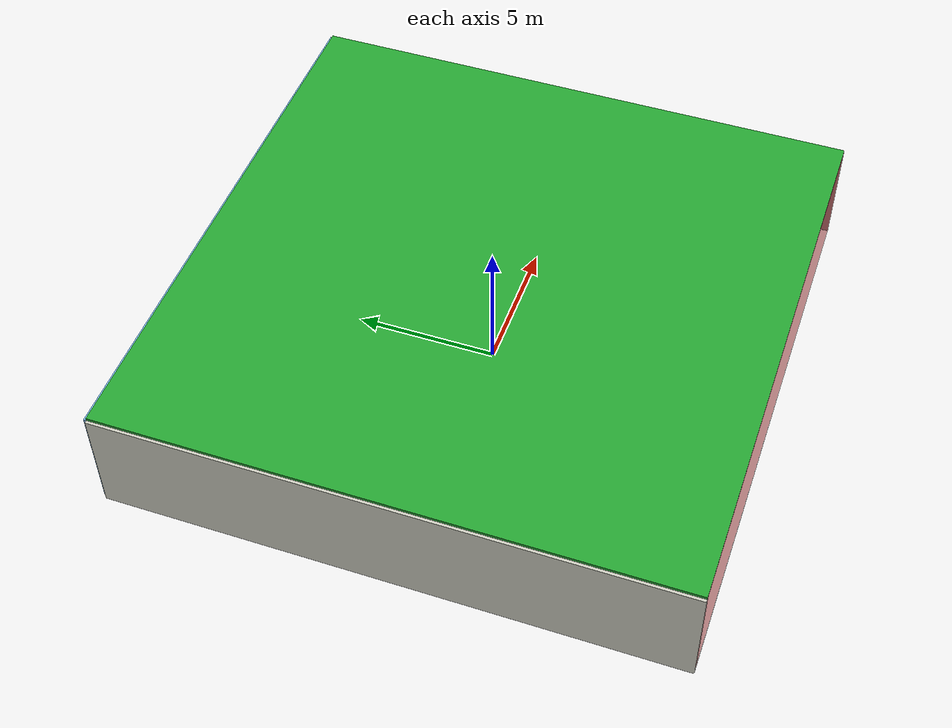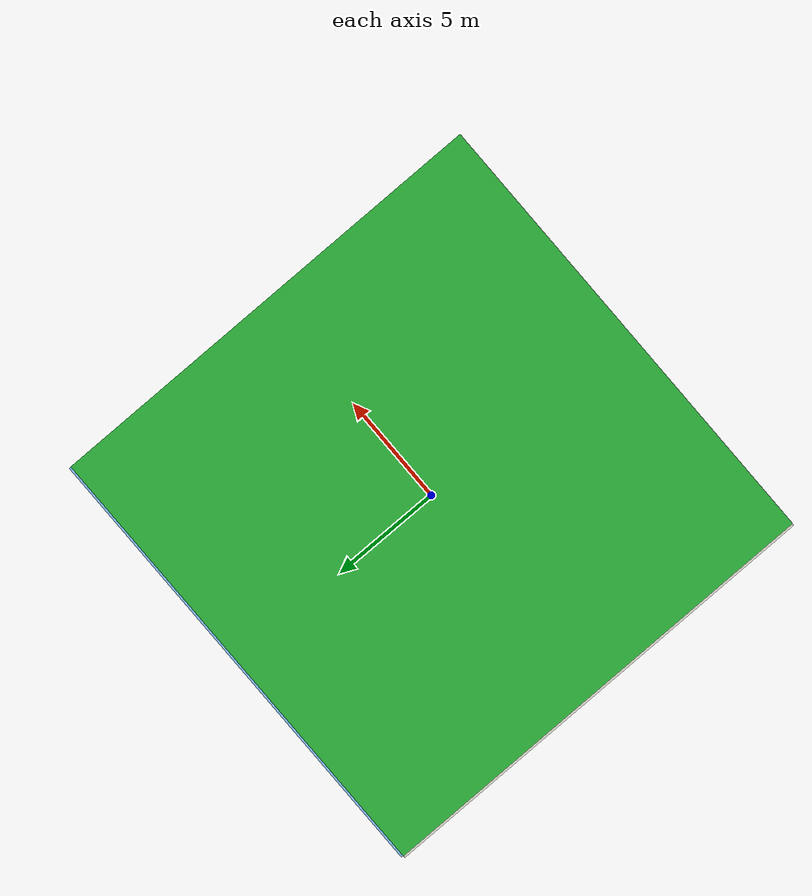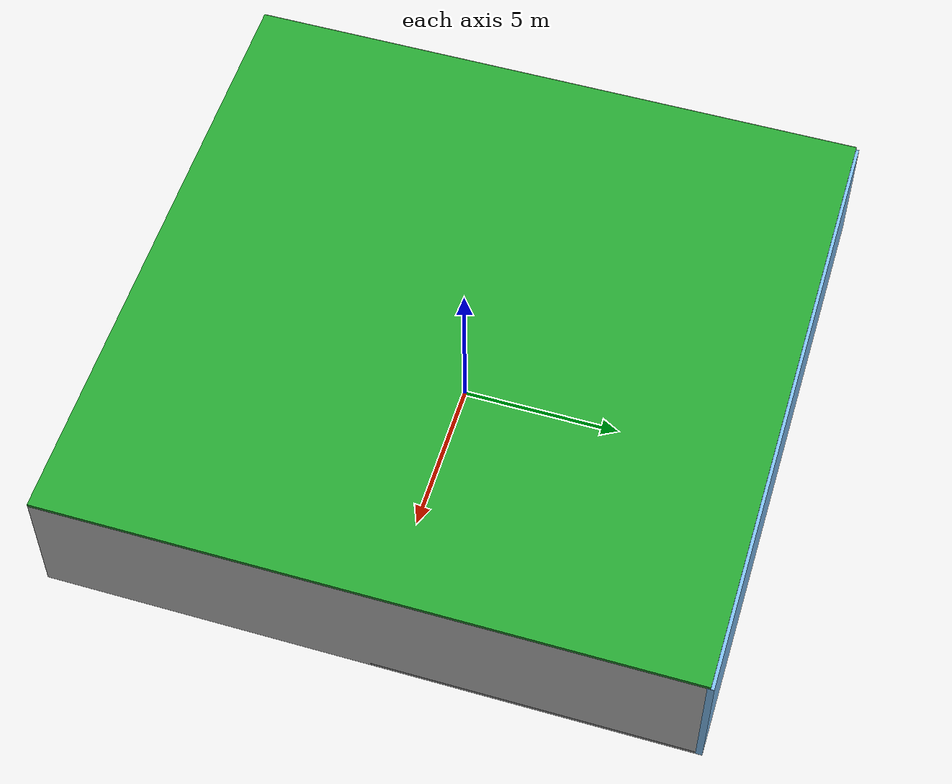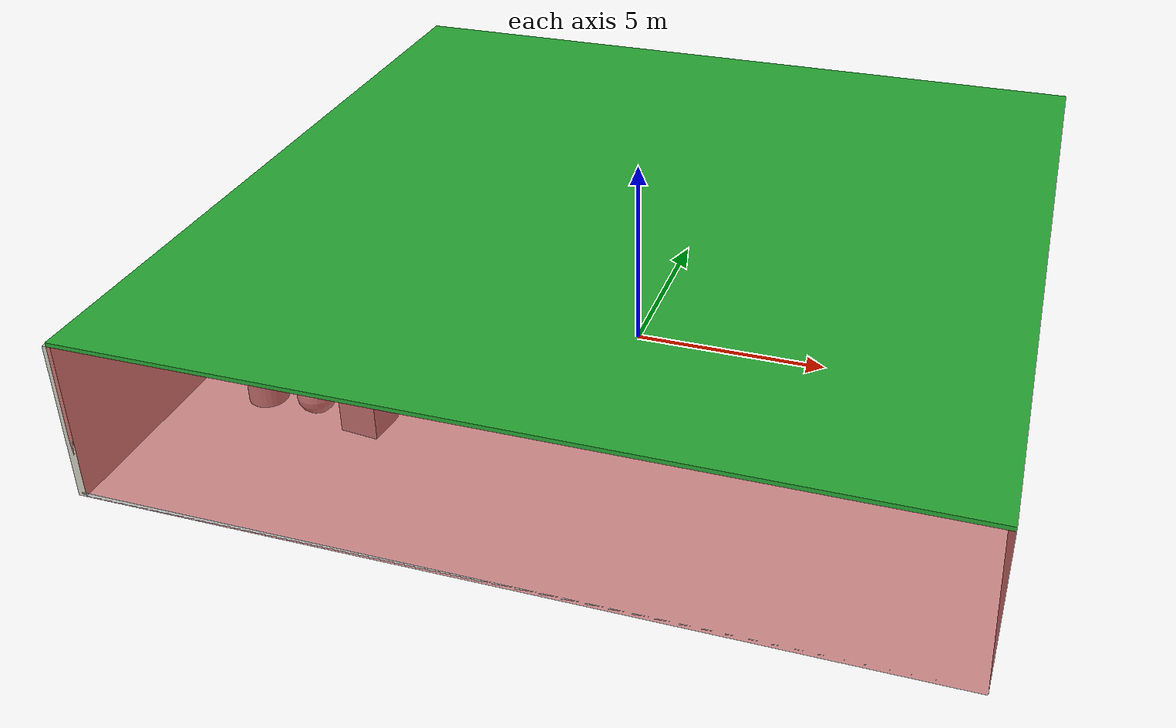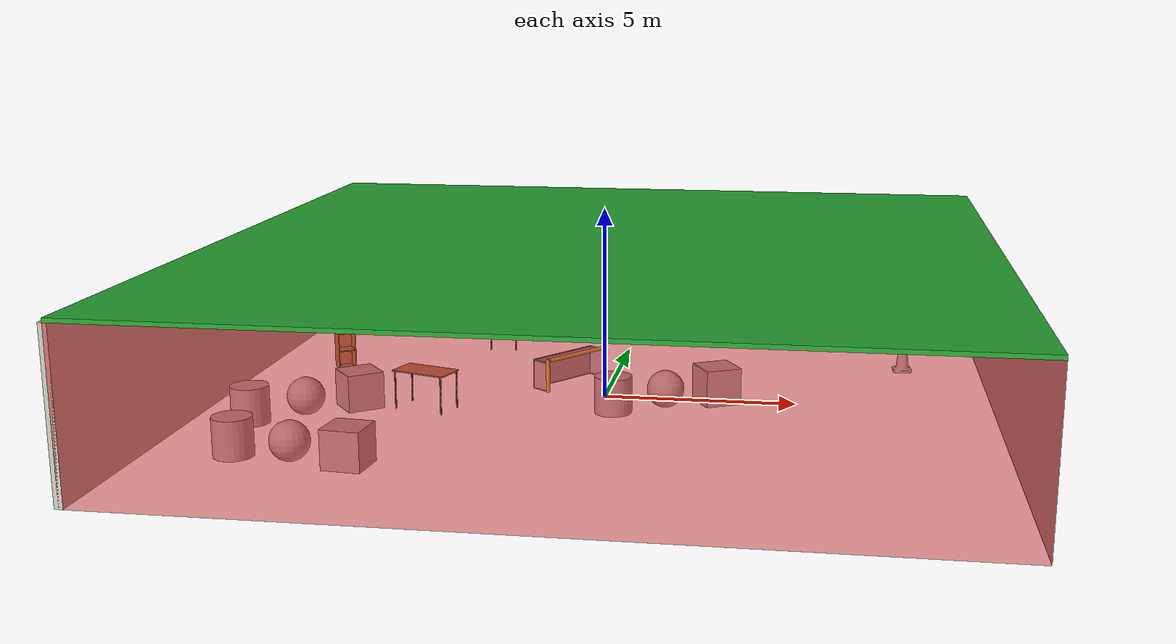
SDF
<sdf version="1.4">
 <world name="default">
  <physics type="ode">
   <max_step_size>0.001</max_step_size>
   <real_time_factor>1</real_time_factor>
   <real_time_update_rate>1000</real_time_update_rate>
   <gravity>0 0 -9.8</gravity>
  </physics>
  <scene><ambient>0.4 0.4 0.4 1</ambient><background>0.7 0.7 0.7 1</background><shadows>1</shadows></scene>
  <model name="Surrounding">
   <static>1</static>
   <link name="Ceiling">
    <collision name="Ceiling_Collision"><geometry><box><size>20 20 0.1</size></box></geometry></collision>
    <visual name="Ceiling_Visual">
     <geometry><box><size>20 20 0.1</size></box></geometry>
     <material>
      <script><uri>file://media/materials/scripts/gazebo.material</uri><name>Gazebo/GreenGlow</name></script>
     </material>
    </visual>
    <pose>0 0 4.05 0 0 0</pose>
   </link>
   <link name="Wall_South">
    <collision name="Wall_South_Collision">
     <geometry><box><size>20 0 4</size></box></geometry>
     <pose>0 0 2 0 -0 0</pose>
    </collision>
    <visual name="Wall_South_Visual">
     <pose>0 0 2 0 -0 0</pose>
     <geometry><box><size>20 0 4</size></box></geometry>
     <material>
      <script><uri>file://media/materials/scripts/gazebo.material</uri><name>Gazebo/RedTransparent</name></script>
     </material>
    </visual>
    <velocity_decay><linear>0</linear><angular>0</angular></velocity_decay>
    <pose>0 -10 0 0 -0 0</pose>
   </link>
   <link name="Wall_East">
    <collision name="Wall_21_Collision">
     <geometry><box><size>20 0 4</size></box></geometry>
     <pose>0 0 2 0 -0 0</pose>
    </collision>
    <visual name="Wall_21_Visual">
     <pose>0 0 2 0 -0 0</pose>
     <geometry><box><size>20 0 4</size></box></geometry>
     <material>
      <script><uri>file://media/materials/scripts/gazebo.material</uri><name>Gazebo/JointAnchor</name></script>
     </material>
    </visual>
    <velocity_decay><linear>0</linear><angular>0</angular></velocity_decay>
    <pose>10 0 0 0 -0 1.5708</pose>
   </link>
   <link name="Wall_North">
    <collision name="Wall_22_Collision">
     <geometry><box><size>20 0.2 4</size></box></geometry>
     <pose>0 0 2 0 -0 0</pose>
    </collision>
    <visual name="Wall_22_Visual">
     <pose>0 0 2 0 -0 0</pose>
     <geometry><box><size>20 0.2 4</size></box></geometry>
     <material>
      <script><uri>file://media/materials/scripts/gazebo.material</uri><name>Gazebo/SkyBlue</name></script>
     </material>
    </visual>
    <velocity_decay><linear>0</linear><angular>0</angular></velocity_decay>
    <pose>0 10 0 0 -0 0</pose>
   </link>
   <link name="Wall_West">
    <collision name="Wall_23_Collision">
     <geometry><box><size>20 0.2 4</size></box></geometry>
     <pose>0 0 2 0 -0 0</pose>
    </collision>
    <visual name="Wall_23_Visual">
     <pose>0 0 2 0 -0 0</pose>
     <geometry><box><size>20 0.2 4</size></box></geometry>
     <material>
      <script><uri>file://media/materials/scripts/gazebo.material</uri><name>Gazebo/PaintedWall</name></script>
     </material>
    </visual>
    <velocity_decay><linear>0</linear><angular>0</angular></velocity_decay>
    <pose>-10 0 0 0 0 -1.5708</pose>
   </link>
   <link name="Ground_link">
    <collision name="collision">
     <pose>0 0 .05 0 -0 0</pose>
     <geometry><box><size>20 20 0.1</size></box></geometry>
    </collision>
    <visual name="visual">
     <pose>0 0 .05 0 -0 0</pose>
     <geometry><box><size>20 20 0.1</size></box></geometry>
     <material>
      <script><uri>file://media/materials/scripts/gazebo.material</uri><name>Gazebo/GreyTransparent</name></script>
     </material>
    </visual>
   </link>
   <static>1</static>
  </model>
  <spherical_coordinates>
   <surface_model>EARTH_WGS84</surface_model>
   <latitude_deg>0</latitude_deg>
   <longitude_deg>0</longitude_deg>
   <elevation>0</elevation>
   <heading_deg>0</heading_deg>
  </spherical_coordinates>
  <light name="lightball_0" type="diffuse">
   <diffuse>0.8 0.8 0.8 1</diffuse>
   <specular>0.2 0.2 0.2 1</specular>
   <attenuation>
    <range>100</range>
    <constant>0.7</constant>
    <linear>0.01</linear>
    <quadratic>0.001</quadratic>
   </attenuation>
   <direction>-0.5 0.1 -0.9</direction>
   <pose>7.94688358655 -9.72205776157 1.47190596385 0 0 0</pose>
  </light>
  <light name="lightball_1" type="diffuse">
   <diffuse>0.8 0.8 0.8 1</diffuse>
   <specular>0.2 0.2 0.2 1</specular>
   <attenuation>
    <range>100</range>
    <constant>0.7</constant>
    <linear>0.01</linear>
    <quadratic>0.001</quadratic>
   </attenuation>
   <direction>-0.5 0.1 -0.9</direction>
   <pose>7.05791170953 5.57300570306 3.51850680125 0 0 0</pose>
  </light>
  <light name="lightball_2" type="diffuse">
   <diffuse>0.8 0.8 0.8 1</diffuse>
   <specular>0.2 0.2 0.2 1</specular>
   <attenuation>
    <range>100</range>
    <constant>0.7</constant>
    <linear>0.01</linear>
    <quadratic>0.001</quadratic>
   </attenuation>
   <direction>-0.5 0.1 -0.9</direction>
   <pose>6.19302147561 -6.05352376364 1.5639831018 0 0 0</pose>
  </light>
  <light name="lightball_3" type="diffuse">
   <diffuse>0.8 0.8 0.8 1</diffuse>
   <specular>0.2 0.2 0.2 1</specular>
   <attenuation>
    <range>100</range>
    <constant>0.7</constant>
    <linear>0.01</linear>
    <quadratic>0.001</quadratic>
   </attenuation>
   <direction>-0.5 0.1 -0.9</direction>
   <pose>7.48078436466 -1.30635473102 2.64916350317 0 0 0</pose>
  </light>
  <light name="lightball_4" type="diffuse">
   <diffuse>0.8 0.8 0.8 1</diffuse>
   <specular>0.2 0.2 0.2 1</specular>
   <attenuation>
    <range>100</range>
    <constant>0.7</constant>
    <linear>0.01</linear>
    <quadratic>0.001</quadratic>
   </attenuation>
   <direction>-0.5 0.1 -0.9</direction>
   <pose>4.94204943731 -6.42890581231 2.36640187546 0 0 0</pose>
  </light>
  <light name="lightball_5" type="diffuse">
   <diffuse>0.8 0.8 0.8 1</diffuse>
   <specular>0.2 0.2 0.2 1</specular>
   <attenuation>
    <range>100</range>
    <constant>0.7</constant>
    <linear>0.01</linear>
    <quadratic>0.001</quadratic>
   </attenuation>
   <direction>-0.5 0.1 -0.9</direction>
   <pose>7.02304843653 -7.11746299901 3.0563004282 0 0 0</pose>
  </light>
  <light name="lightball_6" type="diffuse">
   <diffuse>0.8 0.8 0.8 1</diffuse>
   <specular>0.2 0.2 0.2 1</specular>
   <attenuation>
    <range>100</range>
    <constant>0.7</constant>
    <linear>0.01</linear>
    <quadratic>0.001</quadratic>
   </attenuation>
   <direction>-0.5 0.1 -0.9</direction>
   <pose>-6.66284092167 -0.211001892513 1.6362913972 0 0 0</pose>
  </light>
  <light name="lightball_7" type="diffuse">
   <diffuse>0.8 0.8 0.8 1</diffuse>
   <specular>0.2 0.2 0.2 1</specular>
   <attenuation>
    <range>100</range>
    <constant>0.7</constant>
    <linear>0.01</linear>
    <quadratic>0.001</quadratic>
   </attenuation>
   <direction>-0.5 0.1 -0.9</direction>
   <pose>-5.4785369844 -3.1672194325 3.02383676584 0 0 0</pose>
  </light>
  <light name="lightball_8" type="diffuse">
   <diffuse>0.8 0.8 0.8 1</diffuse>
   <specular>0.2 0.2 0.2 1</specular>
   <attenuation>
    <range>100</range>
    <constant>0.7</constant>
    <linear>0.01</linear>
    <quadratic>0.001</quadratic>
   </attenuation>
   <direction>-0.5 0.1 -0.9</direction>
   <pose>6.32504122851 4.73479318148 3.23533079227 0 0 0</pose>
  </light>
  <light name="lightball_9" type="diffuse">
   <diffuse>0.8 0.8 0.8 1</diffuse>
   <specular>0.2 0.2 0.2 1</specular>
   <attenuation>
    <range>100</range>
    <constant>0.7</constant>
    <linear>0.01</linear>
    <quadratic>0.001</quadratic>
   </attenuation>
   <direction>-0.5 0.1 -0.9</direction>
   <pose>9.04110540605 7.06596469745 0.933947000525 0 0 0</pose>
  </light>
  <light name="lightball_10" type="diffuse">
   <diffuse>0.8 0.8 0.8 1</diffuse>
   <specular>0.2 0.2 0.2 1</specular>
   <attenuation>
    <range>100</range>
    <constant>0.7</constant>
    <linear>0.01</linear>
    <quadratic>0.001</quadratic>
   </attenuation>
   <direction>-0.5 0.1 -0.9</direction>
   <pose>-0.553658862938 -4.80378559678 2.81453575976 0 0 0</pose>
  </light>
  <light name="lightball_11" type="diffuse">
   <diffuse>0.8 0.8 0.8 1</diffuse>
   <specular>0.2 0.2 0.2 1</specular>
   <attenuation>
    <range>100</range>
    <constant>0.7</constant>
    <linear>0.01</linear>
    <quadratic>0.001</quadratic>
   </attenuation>
   <direction>-0.5 0.1 -0.9</direction>
   <pose>-4.24918545974 1.68586919125 3.3612218841 0 0 0</pose>
  </light>
  <light name="lightball_12" type="diffuse">
   <diffuse>0.8 0.8 0.8 1</diffuse>
   <specular>0.2 0.2 0.2 1</specular>
   <attenuation>
    <range>100</range>
    <constant>0.7</constant>
    <linear>0.01</linear>
    <quadratic>0.001</quadratic>
   </attenuation>
   <direction>-0.5 0.1 -0.9</direction>
   <pose>-2.2858167591 -7.06071833407 2.18206124574 0 0 0</pose>
  </light>
  <include>
   <uri>model://textured_shapes</uri>
   <pose>-6.89726739834 -4.84810275709 0 0 0 1.46910242839</pose>
  </include>
  <include>
   <uri>model://textured_shapes</uri>
   <pose>-7.83038987509 -1.11669618494 0 0 0 2.23659393885</pose>
  </include>
  <include><uri>model://cabinet</uri><pose>-7.72359411558 1.90390599642 0 0 0 2.13522330546</pose></include>
  <include><uri>model://cabinet</uri><pose>-7.37247592006 7.25630746992 0 0 0 0.863627810026</pose></include>
  <include><uri>model://table</uri><pose>-4.37608500225 -1.73025393913 0 0 0 2.83106656484</pose></include>
  <include><uri>model://table</uri><pose>-3.71201018628 5.0934679909 0 0 0 1.59358338155</pose></include>
  <include>
   <uri>model://robocup_3Dsim_goal</uri>
   <pose>-0.928650886081 1.02798030908 0 0 0 2.49616188175</pose>
  </include>
  <include>
   <uri>model://textured_shapes</uri>
   <pose>1.50784775542 0.961773821523 0 0 0 2.06230778505</pose>
  </include>
  <include>
   <uri>model://construction_cone</uri>
   <pose>7.88688812632 3.76440130516 0 0 0 1.63672139461</pose>
  </include>
 </world>
</sdf>

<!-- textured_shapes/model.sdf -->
<sdf version="1.6">
  <model name="textured_shapes">
    <pose>0 0 0.5 0 0 0</pose>
    <link name="box">
      <pose>0 -1.5 0 0 0 0</pose>
      <collision name="collision">
        <geometry>
          <box>
            <size>1 1 1</size>
          </box>
        </geometry>
      </collision>
      <visual name="visual">
        <geometry>
          <box>
            <size>1 1 1</size>
          </box>
        </geometry>
        <material>
          <script>
            <uri>model://../model_source/models/textured_shapes/materials/scripts</uri>
            <uri>model://../model_source/models/textured_shapes/materials/textures</uri>
            <name>TexturedShape/Squares</name>
          </script>
        </material>
      </visual>
    </link>
    <link name="sphere">
      <collision name="collision">
        <geometry>
          <sphere>
            <radius>0.5</radius>
          </sphere>
        </geometry>
      </collision>
      <visual name="visual">
        <geometry>
          <sphere>
            <radius>0.5</radius>
          </sphere>
        </geometry>
        <material>
          <script>
            <uri>model://../model_source/models/textured_shapes/materials/scripts</uri>
            <uri>model://../model_source/models/textured_shapes/materials/textures</uri>
            <name>TexturedShape/Squares</name>
          </script>
        </material>
      </visual>
    </link>
    <link name="cylinder">
      <pose>0 1.5 0 0 0 0</pose>
      <collision name="collision">
        <geometry>
          <cylinder>
            <radius>0.5</radius>
            <length>1</length>
          </cylinder>
        </geometry>
      </collision>
      <visual name="visual">
        <geometry>
          <cylinder>
            <radius>0.5</radius>
            <length>1</length>
          </cylinder>
        </geometry>
        <material>
          <script>
            <uri>model://../model_source/models/textured_shapes/materials/scripts</uri>
            <uri>model://../model_source/models/textured_shapes/materials/textures</uri>
            <name>TexturedShape/Squares</name>
          </script>
        </material>
      </visual>
    </link>
  </model>
</sdf>

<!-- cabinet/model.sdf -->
<sdf version="1.5">
  <model name="cabinet">
    <static>true</static>
    <link name="cabinet_bottom_plate">
      <inertial>
        <pose>0 0 -1 0 0 0</pose>
        <inertia>
          <ixx>2.050000</ixx>
          <ixy>0</ixy>
          <ixz>0</ixz>
          <iyy>2.050000</iyy>
          <iyz>0</iyz>
          <izz>2.050000</izz>
        </inertia>
        <mass>25.000000</mass>
      </inertial>
      <collision name="cabinet_bottom_plate_geom">
        <pose>0 0 0.010000 0 0 0</pose>
        <geometry>
          <box>
            <size>0.450000 0.450000 0.020000</size>
          </box>
        </geometry>
      </collision>
      <visual name="cabinet_bottom_plate_geom_visual">
        <pose>0 0 0.010000 0 0 0</pose>
        <geometry>
          <box>
            <size>0.450000 0.450000 0.020000</size>
          </box>
        </geometry>
        <material>
          <script>
            <uri>model://media/materials/scripts/gazebo.material</uri>
            <name>Gazebo/Wood</name>
          </script>
        </material>
      </visual>
      <collision name="cabinet_bottom_plate_geom_cabinet_back_plate">
        <pose>0.235000 0 0.510000 0 0 0</pose>
        <geometry>
          <box>
            <size>0.020000 0.450000 1.020000</size>
          </box>
        </geometry>
      </collision>
      <visual name="cabinet_bottom_plate_geom_cabinet_back_plate_visual">
        <pose>0.235000 0 0.510000 0 0 0</pose>
        <geometry>
          <box>
            <size>0.020000 0.450000 1.020000</size>
          </box>
        </geometry>
        <material>
          <script>
            <uri>model://media/materials/scripts/gazebo.material</uri>
            <name>Gazebo/Wood</name>
          </script>
        </material>
      </visual>
      <collision name="cabinet_bottom_plate_geom_cabinet_left_plate">
        <pose>0 0.235000 0.510000 0 0 0</pose>
        <geometry>
          <box>
            <size>0.450000 0.020000 1.020000</size>
          </box>
        </geometry>
      </collision>
      <visual name="cabinet_bottom_plate_geom_cabinet_left_plate_visual">
        <pose>0 0.235000 0.510000 0 0 0</pose>
        <geometry>
          <box>
            <size>0.450000 0.020000 1.020000</size>
          </box>
        </geometry>
        <material>
          <script>
            <uri>model://media/materials/scripts/gazebo.material</uri>
            <name>Gazebo/Wood</name>
          </script>
        </material>
      </visual>
      <collision name="cabinet_bottom_plate_geom_cabinet_middle_plate">
        <pose>0 0 0.510000 0 0 0</pose>
        <geometry>
          <box>
            <size>0.450000 0.450000 0.020000</size>
          </box>
        </geometry>
      </collision>
      <visual name="cabinet_bottom_plate_geom_cabinet_middle_plate_visual">
        <pose>0 0 0.510000 0 0 0</pose>
        <geometry>
          <box>
            <size>0.450000 0.450000 0.020000</size>
          </box>
        </geometry>
        <material>
          <script>
            <uri>model://media/materials/scripts/gazebo.material</uri>
            <name>Gazebo/Wood</name>
          </script>
        </material>
      </visual>
      <collision name="cabinet_bottom_plate_geom_cabinet_right_plate">
        <pose>0 -0.235000 0.510000 0 0 0</pose>
        <geometry>
          <box>
            <size>0.450000 0.020000 1.020000</size>
          </box>
        </geometry>
      </collision>
      <visual name="cabinet_bottom_plate_geom_cabinet_right_plate_visual">
        <pose>0 -0.235000 0.510000 0 0 0</pose>
        <geometry>
          <box>
            <size>0.450000 0.020000 1.020000</size>
          </box>
        </geometry>
        <material>
          <script>
            <uri>model://media/materials/scripts/gazebo.material</uri>
            <name>Gazebo/Wood</name>
          </script>
        </material>
      </visual>
      <collision name="cabinet_bottom_plate_geom_cabinet_top_plate">
        <pose>0 0 1.010000 0 0 0</pose>
        <geometry>
          <box>
            <size>0.450000 0.450000 0.020000</size>
          </box>
        </geometry>
      </collision>
      <visual name="cabinet_bottom_plate_geom_cabinet_top_plate_visual">
        <pose>0 0 1.010000 0 0 0</pose>
        <geometry>
          <box>
            <size>0.450000 0.450000 0.020000</size>
          </box>
        </geometry>
        <material>
          <script>
            <uri>model://media/materials/scripts/gazebo.material</uri>
            <name>Gazebo/Wood</name>
          </script>
        </material>
      </visual>
    </link>
  </model>
</sdf>

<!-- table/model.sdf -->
<sdf version="1.5">
  <model name="table">
    <static>true</static>
    <link name="link">
      <collision name="surface">
        <pose>0 0 1.0 0 0 0</pose>
        <geometry>
          <box>
            <size>1.5 0.8 0.03</size>
          </box>
        </geometry>
        <surface>
          <friction>
            <ode>
              <mu>0.6</mu>
              <mu2>0.6</mu2>
            </ode>
          </friction>
        </surface>
      </collision>
      <visual name="visual1">
        <pose>0 0 1.0 0 0 0</pose>
        <geometry>
          <box>
            <size>1.5 0.8 0.03</size>
          </box>
        </geometry>
        <material>
          <script>
            <uri>model://media/materials/scripts/gazebo.material</uri>
            <name>Gazebo/Wood</name>
          </script>
        </material>
      </visual>
      <collision name="front_left_leg">
        <pose>0.68 0.38 0.5 0 0 0</pose>
        <geometry>
          <cylinder>
            <radius>0.02</radius>
            <length>1.0</length>
          </cylinder>
        </geometry>
      </collision>
      <visual name="front_left_leg">
        <pose>0.68 0.38 0.5 0 0 0</pose>
        <geometry>
          <cylinder>
            <radius>0.02</radius>
            <length>1.0</length>
          </cylinder>
        </geometry>
        <material>
          <script>
            <uri>model://media/materials/scripts/gazebo.material</uri>
            <name>Gazebo/Grey</name>
          </script>
        </material>
      </visual>
      <collision name="front_right_leg">
        <pose>0.68 -0.38 0.5 0 0 0</pose>
        <geometry>
          <cylinder>
            <radius>0.02</radius>
            <length>1.0</length>
          </cylinder>
        </geometry>
      </collision>
      <visual name="front_right_leg">
        <pose>0.68 -0.38 0.5 0 0 0</pose>
        <geometry>
          <cylinder>
            <radius>0.02</radius>
            <length>1.0</length>
          </cylinder>
        </geometry>
        <material>
          <script>
            <uri>model://media/materials/scripts/gazebo.material</uri>
            <name>Gazebo/Grey</name>
          </script>
        </material>
      </visual>
      <collision name="back_right_leg">
        <pose>-0.68 -0.38 0.5 0 0 0</pose>
        <geometry>
          <cylinder>
            <radius>0.02</radius>
            <length>1.0</length>
          </cylinder>
        </geometry>
      </collision>
      <visual name="back_right_leg">
        <pose>-0.68 -0.38 0.5 0 0 0</pose>
        <geometry>
          <cylinder>
            <radius>0.02</radius>
            <length>1.0</length>
          </cylinder>
        </geometry>
        <material>
          <script>
            <uri>model://media/materials/scripts/gazebo.material</uri>
            <name>Gazebo/Grey</name>
          </script>
        </material>
      </visual>
      <collision name="back_left_leg">
        <pose>-0.68 0.38 0.5 0 0 0</pose>
        <geometry>
          <cylinder>
            <radius>0.02</radius>
            <length>1.0</length>
          </cylinder>
        </geometry>
      </collision>
      <visual name="back_left_leg">
        <pose>-0.68 0.38 0.5 0 0 0</pose>
        <geometry>
          <cylinder>
            <radius>0.02</radius>
            <length>1.0</length>
          </cylinder>
        </geometry>
        <material>
          <script>
            <uri>model://media/materials/scripts/gazebo.material</uri>
            <name>Gazebo/Grey</name>
          </script>
        </material>
      </visual>
    </link>
  </model>
</sdf>

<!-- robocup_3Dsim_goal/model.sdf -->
<sdf version="1.5">
  <model name="robocup_3d_goal">
    <static>true</static>
    <link name="left_post">
      <pose>0 1.05 0.45 0 0 0</pose>
      <collision name="collision">
        <geometry>
          <cylinder>
            <radius>0.05</radius>
            <length>0.9</length>
          </cylinder>
        </geometry>
      </collision>
      <visual name="visual">
        <geometry>
          <cylinder>
            <radius>0.05</radius>
            <length>0.9</length>
          </cylinder>
        </geometry>
        <material>
          <script>
            <uri>file://media/materials/scripts/gazebo.material</uri>
            <name>Gazebo/ZincYellow</name>
          </script>
        </material>
      </visual>
    </link>
    <link name="left_support_horiz_lower">
      <pose>0.30 1.05 0.01 0 0 0</pose>
      <collision name="collision">
        <geometry>
          <box>
            <size>0.50 0.02 0.02</size>
          </box>
        </geometry>
      </collision>
      <visual name="visual">
        <geometry>
          <box>
            <size>0.50 0.02 0.02</size>
          </box>
        </geometry>
        <material>
          <script>
            <uri>file://media/materials/scripts/gazebo.material</uri>
            <name>Gazebo/White</name>
          </script>
        </material>
      </visual>
    </link>
    <link name="left_support_horiz_upper">
      <pose>0.30 1.05 0.79 0 0 0</pose>
      <collision name="collision">
        <geometry>
          <box>
            <size>0.50 0.02 0.02</size>
          </box>
        </geometry>
      </collision>
      <visual name="visual">
        <geometry>
          <box>
            <size>0.50 0.02 0.02</size>
          </box>
        </geometry>
        <material>
          <script>
            <uri>file://media/materials/scripts/gazebo.material</uri>
            <name>Gazebo/White</name>
          </script>
        </material>
      </visual>
    </link>
    <link name="left_support_vertical">
      <pose>0.56 1.05 0.4 0 1.5708 0</pose>
      <collision name="collision">
        <geometry>
          <box>
            <size>0.80 0.02 0.02</size>
          </box>
        </geometry>
      </collision>
      <visual name="visual">
        <geometry>
          <box>
            <size>0.80 0.02 0.02</size>
          </box>
        </geometry>
        <material>
          <script>
            <uri>file://media/materials/scripts/gazebo.material</uri>
            <name>Gazebo/White</name>
          </script>
        </material>
      </visual>
    </link>
    <link name="right_support_horiz_lower">
      <pose>0.30 -1.05 0.01 0 0 0</pose>
      <collision name="collision">
        <geometry>
          <box>
            <size>0.50 0.02 0.02</size>
          </box>
        </geometry>
      </collision>
      <visual name="visual">
        <geometry>
          <box>
            <size>0.50 0.02 0.02</size>
          </box>
        </geometry>
        <material>
          <script>
            <uri>file://media/materials/scripts/gazebo.material</uri>
            <name>Gazebo/White</name>
          </script>
        </material>
      </visual>
    </link>
    <link name="right_support_horiz_upper">
      <pose>0.30 -1.05 0.79 0 0 0</pose>
      <collision name="collision">
        <geometry>
          <box>
            <size>0.50 0.02 0.02</size>
          </box>
        </geometry>
      </collision>
      <visual name="visual">
        <geometry>
          <box>
            <size>0.50 0.02 0.02</size>
          </box>
        </geometry>
        <material>
          <script>
            <uri>file://media/materials/scripts/gazebo.material</uri>
            <name>Gazebo/White</name>
          </script>
        </material>
      </visual>
    </link>
    <link name="right_support_vertical">
      <pose>0.56 -1.05 0.4 0 1.5708 0</pose>
      <collision name="collision">
        <geometry>
          <box>
            <size>0.80 0.02 0.02</size>
          </box>
        </geometry>
      </collision>
      <visual name="visual">
        <geometry>
          <box>
            <size>0.80 0.02 0.02</size>
          </box>
        </geometry>
        <material>
          <script>
            <uri>file://media/materials/scripts/gazebo.material</uri>
            <name>Gazebo/White</name>
          </script>
        </material>
      </visual>
    </link>
    <link name="center_support_horiz_lower">
      <pose>0.56 0 0.01 0 1.5708 0</pose>
      <collision name="collision">
        <geometry>
          <box>
            <size>0.02 2.08 0.02</size>
          </box>
        </geometry>
      </collision>
      <visual name="visual">
        <geometry>
          <box>
            <size>0.02 2.08 0.02</size>
          </box>
        </geometry>
        <material>
          <script>
            <uri>file://media/materials/scripts/gazebo.material</uri>
            <name>Gazebo/White</name>
          </script>
        </material>
      </visual>
    </link>
    <link name="center_support_horiz_upper">
      <pose>0.56 0 0.79 0 1.5708 0</pose>
      <collision name="collision">
        <geometry>
          <box>
            <size>0.02 2.08 0.02</size>
          </box>
        </geometry>
      </collision>
      <visual name="visual">
        <geometry>
          <box>
            <size>0.02 2.08 0.02</size>
          </box>
        </geometry>
        <material>
          <script>
            <uri>file://media/materials/scripts/gazebo.material</uri>
            <name>Gazebo/White</name>
          </script>
        </material>
      </visual>
    </link>
    <link name="right_post">
      <pose>0 -1.05 0.45 0 0 0</pose>
      <collision name="collision">
        <geometry>
          <cylinder>
            <radius>0.05</radius>
            <length>0.9</length>
          </cylinder>
        </geometry>
      </collision>
      <visual name="visual">
        <geometry>
          <cylinder>
            <radius>0.05</radius>
            <length>0.9</length>
          </cylinder>
        </geometry>
        <material>
          <script>
            <uri>file://media/materials/scripts/gazebo.material</uri>
            <name>Gazebo/ZincYellow</name>
          </script>
        </material>
      </visual>
    </link>
    <link name="crossbar">
      <pose>0 0 0.85 1.57 1.57 0</pose>
      <collision name="collision">
        <geometry>
          <cylinder>
            <radius>0.05</radius>
            <length>2.0</length>
          </cylinder>
        </geometry>
      </collision>
      <visual name="visual">
        <geometry>
          <cylinder>
            <radius>0.05</radius>
            <length>2.0</length>
          </cylinder>
        </geometry>
        <material>
          <script>
            <uri>file://media/materials/scripts/gazebo.material</uri>
            <name>Gazebo/ZincYellow</name>
          </script>
        </material>
      </visual>
    </link>
    <link name="center_net">
      <pose>0.56 0 0.40 0 0 0</pose>
      <collision name="collision">
        <geometry>
          <box>
            <size>0.01 2.1 0.80</size>
          </box>
        </geometry>
      </collision>
      <visual name="visual">
        <geometry>
          <box>
            <size>0.01 2.1 0.80</size>
          </box>
        </geometry>
        <material>
          <script>
            <uri>model://../model_source/models/robocup09_spl_field/materials/scripts/</uri>
            <uri>model://../model_source/models/robocup09_spl_field/materials/textures/</uri>
            <name>RoboCup/Net</name>
          </script>
        </material>
      </visual>
    </link>
    <link name="left_net">
      <pose>0.30 1.05 0.40 0 0 0</pose>
      <collision name="collision">
        <geometry>
          <box>
            <size>0.50 0.01 0.76</size>
          </box>
        </geometry>
      </collision>
      <visual name="visual">
        <geometry>
          <box>
            <size>0.50 0.01 0.76</size>
          </box>
        </geometry>
        <material>
          <script>
            <uri>model://../model_source/models/robocup09_spl_field/materials/scripts/</uri>
            <uri>model://../model_source/models/robocup09_spl_field/materials/textures/</uri>
            <name>RoboCup/Net</name>
          </script>
        </material>
      </visual>
    </link>
    <link name="right_net">
      <pose>0.30 -1.05 0.40 0 0 0</pose>
      <collision name="collision">
        <geometry>
          <box>
            <size>0.50 0.01 0.76</size>
          </box>
        </geometry>
      </collision>
      <visual name="visual">
        <geometry>
          <box>
            <size>0.50 0.01 0.76</size>
          </box>
        </geometry>
        <material>
          <script>
            <uri>model://../model_source/models/robocup09_spl_field/materials/scripts/</uri>
            <uri>model://../model_source/models/robocup09_spl_field/materials/textures/</uri>
            <name>RoboCup/Net</name>
          </script>
        </material>
      </visual>
    </link>
  </model>
</sdf>

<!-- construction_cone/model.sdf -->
<sdf version="1.5">
  <model name="Construction Cone">
    <link name="link">
      <collision name="collision">
        <geometry>
          <mesh>
            <scale>10 10 10</scale>
            <uri>file://isr-testbed/construction_cone/meshes/construction_cone.dae</uri>
          </mesh>
        </geometry>
      </collision>
      <visual name="visual">
        <geometry>
          <mesh>
            <scale>10 10 10</scale>
            <uri>file://isr-testbed/construction_cone/meshes/construction_cone.dae</uri>
          </mesh>
        </geometry>
      </visual>
    </link>
  </model>
</sdf>
